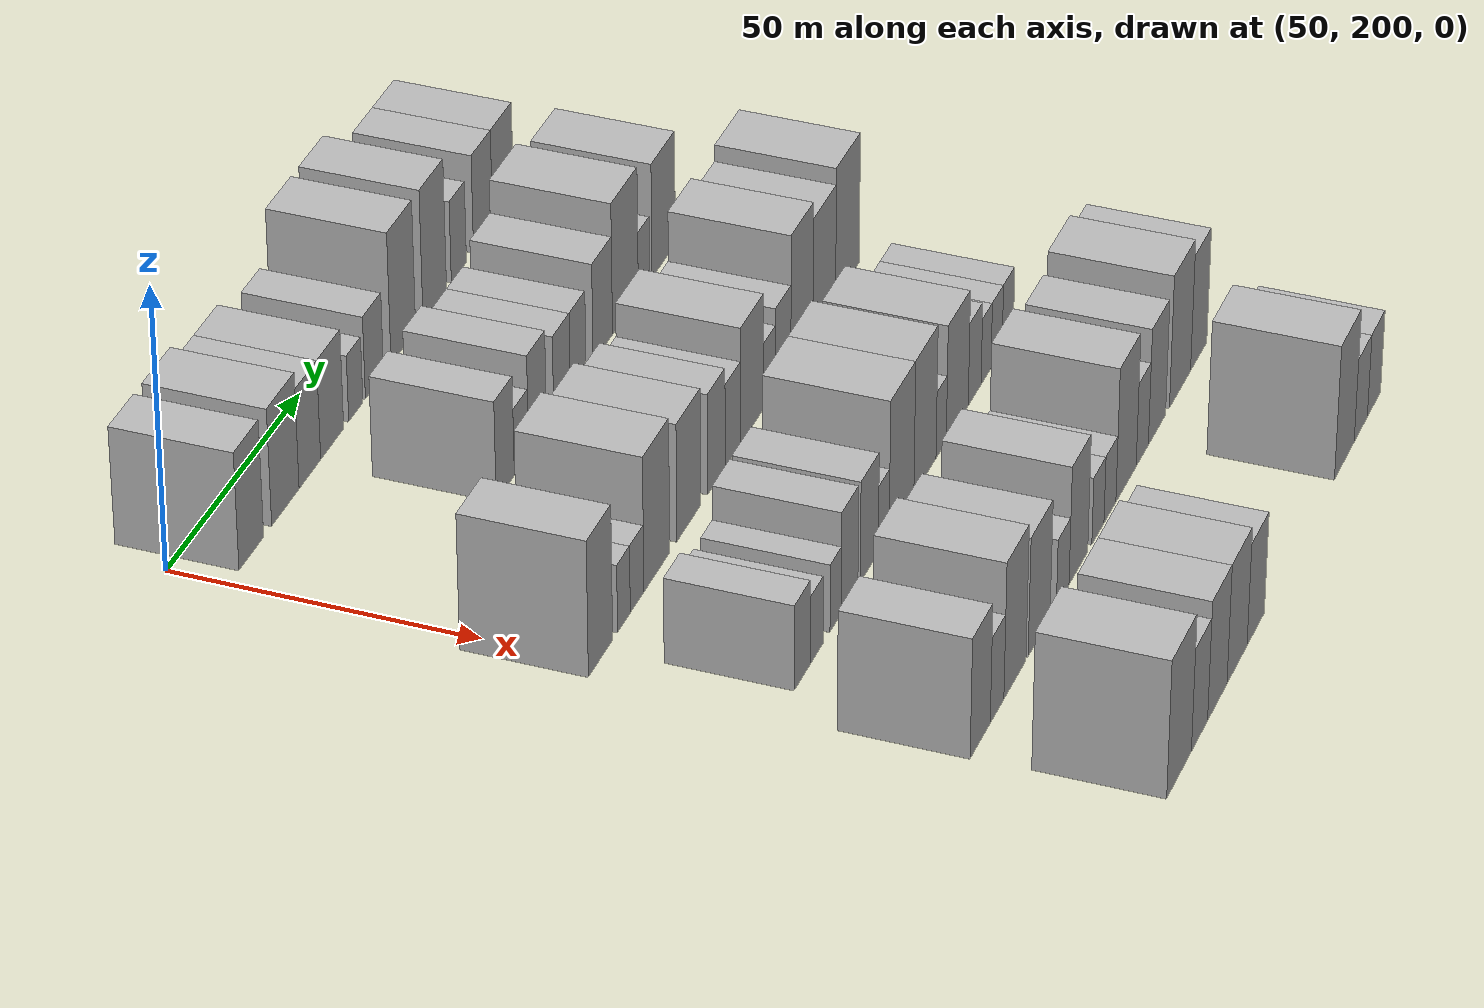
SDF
<sdf version="1.6">
 <world name="default">
  <model name="building_88">
   <static>1</static>
   <pose>50.0000 208.3711 0 0.000000 0.000000 0.000000</pose>
   <link name="link">
    <pose>0 0 10.50 0 0 0</pose>
    <collision name="collision"><geometry><box><size>20.0000 9.1573 21.0000</size></box></geometry></collision>
    <visual name="visual">
     <cast_shadows>0</cast_shadows>
     <geometry><box><size>20.0000 9.1573 21.0000</size></box></geometry>
     <material>
      <script>
       <uri>model://HANNAS_wall/materials/scripts</uri>
       <uri>model://HANNAS_wall/materials/textures</uri>
       <name>vrc/HANNAS_wall</name>
      </script>
     </material>
    </visual>
   </link>
  </model>
  <model name="building_89">
   <static>1</static>
   <pose>50.0000 221.1318 0 0.000000 0.000000 0.000000</pose>
   <link name="link">
    <pose>0 0 10.50 0 0 0</pose>
    <collision name="collision"><geometry><box><size>20.0000 10.3640 21.0000</size></box></geometry></collision>
    <visual name="visual">
     <cast_shadows>0</cast_shadows>
     <geometry><box><size>20.0000 10.3640 21.0000</size></box></geometry>
     <material>
      <script>
       <uri>model://HANNAS_wall/materials/scripts</uri>
       <uri>model://HANNAS_wall/materials/textures</uri>
       <name>vrc/HANNAS_wall</name>
      </script>
     </material>
    </visual>
   </link>
  </model>
  <model name="building_90">
   <static>1</static>
   <pose>50.0000 230.4606 0 0.000000 0.000000 0.000000</pose>
   <link name="link">
    <pose>0 0 9.00 0 0 0</pose>
    <collision name="collision"><geometry><box><size>20.0000 8.2935 18.0000</size></box></geometry></collision>
    <visual name="visual">
     <cast_shadows>0</cast_shadows>
     <geometry><box><size>20.0000 8.2935 18.0000</size></box></geometry>
     <material>
      <script>
       <uri>model://HANNAS_wall/materials/scripts</uri>
       <uri>model://HANNAS_wall/materials/textures</uri>
       <name>vrc/HANNAS_wall</name>
      </script>
     </material>
    </visual>
   </link>
  </model>
  <model name="building_91">
   <static>1</static>
   <pose>50.0000 239.0653 0 0.000000 0.000000 0.000000</pose>
   <link name="link">
    <pose>0 0 9.00 0 0 0</pose>
    <collision name="collision"><geometry><box><size>20.0000 8.9161 18.0000</size></box></geometry></collision>
    <visual name="visual">
     <cast_shadows>0</cast_shadows>
     <geometry><box><size>20.0000 8.9161 18.0000</size></box></geometry>
     <material>
      <script>
       <uri>model://HANNAS_wall/materials/scripts</uri>
       <uri>model://HANNAS_wall/materials/textures</uri>
       <name>vrc/HANNAS_wall</name>
      </script>
     </material>
    </visual>
   </link>
  </model>
  <model name="building_92">
   <static>1</static>
   <pose>50.0000 248.3040 0 0.000000 0.000000 0.000000</pose>
   <link name="link">
    <pose>0 0 6.00 0 0 0</pose>
    <collision name="collision"><geometry><box><size>20.0000 5.5612 12.0000</size></box></geometry></collision>
    <visual name="visual">
     <cast_shadows>0</cast_shadows>
     <geometry><box><size>20.0000 5.5612 12.0000</size></box></geometry>
     <material>
      <script>
       <uri>model://HANNAS_wall/materials/scripts</uri>
       <uri>model://HANNAS_wall/materials/textures</uri>
       <name>vrc/HANNAS_wall</name>
      </script>
     </material>
    </visual>
   </link>
  </model>
  <model name="building_93">
   <static>1</static>
   <pose>50.0000 255.6967 0 0.000000 0.000000 0.000000</pose>
   <link name="link">
    <pose>0 0 7.50 0 0 0</pose>
    <collision name="collision"><geometry><box><size>20.0000 7.2244 15.0000</size></box></geometry></collision>
    <visual name="visual">
     <cast_shadows>0</cast_shadows>
     <geometry><box><size>20.0000 7.2244 15.0000</size></box></geometry>
     <material>
      <script>
       <uri>model://HANNAS_wall/materials/scripts</uri>
       <uri>model://HANNAS_wall/materials/textures</uri>
       <name>vrc/HANNAS_wall</name>
      </script>
     </material>
    </visual>
   </link>
  </model>
  <model name="building_94">
   <static>1</static>
   <pose>50.0000 267.2891 0 0.000000 0.000000 0.000000</pose>
   <link name="link">
    <pose>0 0 12.00 0 0 0</pose>
    <collision name="collision"><geometry><box><size>20.0000 9.9604 24.0000</size></box></geometry></collision>
    <visual name="visual">
     <cast_shadows>0</cast_shadows>
     <geometry><box><size>20.0000 9.9604 24.0000</size></box></geometry>
     <material>
      <script>
       <uri>model://HANNAS_wall/materials/scripts</uri>
       <uri>model://HANNAS_wall/materials/textures</uri>
       <name>vrc/HANNAS_wall</name>
      </script>
     </material>
    </visual>
   </link>
  </model>
  <model name="building_95">
   <static>1</static>
   <pose>50.0000 280.1073 0 0.000000 0.000000 0.000000</pose>
   <link name="link">
    <pose>0 0 12.00 0 0 0</pose>
    <collision name="collision"><geometry><box><size>20.0000 9.6760 24.0000</size></box></geometry></collision>
    <visual name="visual">
     <cast_shadows>0</cast_shadows>
     <geometry><box><size>20.0000 9.6760 24.0000</size></box></geometry>
     <material>
      <script>
       <uri>model://HANNAS_wall/materials/scripts</uri>
       <uri>model://HANNAS_wall/materials/textures</uri>
       <name>vrc/HANNAS_wall</name>
      </script>
     </material>
    </visual>
   </link>
  </model>
  <model name="building_96">
   <static>1</static>
   <pose>50.0000 290.0958 0 0.000000 0.000000 0.000000</pose>
   <link name="link">
    <pose>0 0 7.50 0 0 0</pose>
    <collision name="collision"><geometry><box><size>20.0000 6.3010 15.0000</size></box></geometry></collision>
    <visual name="visual">
     <cast_shadows>0</cast_shadows>
     <geometry><box><size>20.0000 6.3010 15.0000</size></box></geometry>
     <material>
      <script>
       <uri>model://HANNAS_wall/materials/scripts</uri>
       <uri>model://HANNAS_wall/materials/textures</uri>
       <name>vrc/HANNAS_wall</name>
      </script>
     </material>
    </visual>
   </link>
  </model>
  <model name="building_97">
   <static>1</static>
   <pose>50.0000 300.2858 0 0.000000 0.000000 0.000000</pose>
   <link name="link">
    <pose>0 0 9.00 0 0 0</pose>
    <collision name="collision"><geometry><box><size>20.0000 8.0790 18.0000</size></box></geometry></collision>
    <visual name="visual">
     <cast_shadows>0</cast_shadows>
     <geometry><box><size>20.0000 8.0790 18.0000</size></box></geometry>
     <material>
      <script>
       <uri>model://HANNAS_wall/materials/scripts</uri>
       <uri>model://HANNAS_wall/materials/textures</uri>
       <name>vrc/HANNAS_wall</name>
      </script>
     </material>
    </visual>
   </link>
  </model>
  <model name="building_98">
   <static>1</static>
   <pose>50.0000 308.7973 0 0.000000 0.000000 0.000000</pose>
   <link name="link">
    <pose>0 0 9.00 0 0 0</pose>
    <collision name="collision"><geometry><box><size>20.0000 8.9439 18.0000</size></box></geometry></collision>
    <visual name="visual">
     <cast_shadows>0</cast_shadows>
     <geometry><box><size>20.0000 8.9439 18.0000</size></box></geometry>
     <material>
      <script>
       <uri>model://HANNAS_wall/materials/scripts</uri>
       <uri>model://HANNAS_wall/materials/textures</uri>
       <name>vrc/HANNAS_wall</name>
      </script>
     </material>
    </visual>
   </link>
  </model>
  <model name="building_201">
   <static>1</static>
   <pose>79.0000 236.9448 0 0.000000 0.000000 0.000000</pose>
   <link name="link">
    <pose>0 0 9.00 0 0 0</pose>
    <collision name="collision"><geometry><box><size>20.0000 7.3240 18.0000</size></box></geometry></collision>
    <visual name="visual">
     <cast_shadows>0</cast_shadows>
     <geometry><box><size>20.0000 7.3240 18.0000</size></box></geometry>
     <material>
      <script>
       <uri>model://HANNAS_wall/materials/scripts</uri>
       <uri>model://HANNAS_wall/materials/textures</uri>
       <name>vrc/HANNAS_wall</name>
      </script>
     </material>
    </visual>
   </link>
  </model>
  <model name="building_202">
   <static>1</static>
   <pose>79.0000 243.5444 0 0.000000 0.000000 0.000000</pose>
   <link name="link">
    <pose>0 0 6.00 0 0 0</pose>
    <collision name="collision"><geometry><box><size>20.0000 5.8751 12.0000</size></box></geometry></collision>
    <visual name="visual">
     <cast_shadows>0</cast_shadows>
     <geometry><box><size>20.0000 5.8751 12.0000</size></box></geometry>
     <material>
      <script>
       <uri>model://HANNAS_wall/materials/scripts</uri>
       <uri>model://HANNAS_wall/materials/textures</uri>
       <name>vrc/HANNAS_wall</name>
      </script>
     </material>
    </visual>
   </link>
  </model>
  <model name="building_203">
   <static>1</static>
   <pose>79.0000 250.1684 0 0.000000 0.000000 0.000000</pose>
   <link name="link">
    <pose>0 0 9.00 0 0 0</pose>
    <collision name="collision"><geometry><box><size>20.0000 7.3730 18.0000</size></box></geometry></collision>
    <visual name="visual">
     <cast_shadows>0</cast_shadows>
     <geometry><box><size>20.0000 7.3730 18.0000</size></box></geometry>
     <material>
      <script>
       <uri>model://HANNAS_wall/materials/scripts</uri>
       <uri>model://HANNAS_wall/materials/textures</uri>
       <name>vrc/HANNAS_wall</name>
      </script>
     </material>
    </visual>
   </link>
  </model>
  <model name="building_204">
   <static>1</static>
   <pose>79.0000 260.3399 0 0.000000 0.000000 0.000000</pose>
   <link name="link">
    <pose>0 0 7.50 0 0 0</pose>
    <collision name="collision"><geometry><box><size>20.0000 6.9699 15.0000</size></box></geometry></collision>
    <visual name="visual">
     <cast_shadows>0</cast_shadows>
     <geometry><box><size>20.0000 6.9699 15.0000</size></box></geometry>
     <material>
      <script>
       <uri>model://HANNAS_wall/materials/scripts</uri>
       <uri>model://HANNAS_wall/materials/textures</uri>
       <name>vrc/HANNAS_wall</name>
      </script>
     </material>
    </visual>
   </link>
  </model>
  <model name="building_205">
   <static>1</static>
   <pose>79.0000 267.1229 0 0.000000 0.000000 0.000000</pose>
   <link name="link">
    <pose>0 0 7.50 0 0 0</pose>
    <collision name="collision"><geometry><box><size>20.0000 6.5961 15.0000</size></box></geometry></collision>
    <visual name="visual">
     <cast_shadows>0</cast_shadows>
     <geometry><box><size>20.0000 6.5961 15.0000</size></box></geometry>
     <material>
      <script>
       <uri>model://HANNAS_wall/materials/scripts</uri>
       <uri>model://HANNAS_wall/materials/textures</uri>
       <name>vrc/HANNAS_wall</name>
      </script>
     </material>
    </visual>
   </link>
  </model>
  <model name="building_206">
   <static>1</static>
   <pose>79.0000 277.5878 0 0.000000 0.000000 0.000000</pose>
   <link name="link">
    <pose>0 0 9.00 0 0 0</pose>
    <collision name="collision"><geometry><box><size>20.0000 8.3338 18.0000</size></box></geometry></collision>
    <visual name="visual">
     <cast_shadows>0</cast_shadows>
     <geometry><box><size>20.0000 8.3338 18.0000</size></box></geometry>
     <material>
      <script>
       <uri>model://HANNAS_wall/materials/scripts</uri>
       <uri>model://HANNAS_wall/materials/textures</uri>
       <name>vrc/HANNAS_wall</name>
      </script>
     </material>
    </visual>
   </link>
  </model>
  <model name="building_207">
   <static>1</static>
   <pose>79.0000 287.3662 0 0.000000 0.000000 0.000000</pose>
   <link name="link">
    <pose>0 0 12.00 0 0 0</pose>
    <collision name="collision"><geometry><box><size>20.0000 11.2230 24.0000</size></box></geometry></collision>
    <visual name="visual">
     <cast_shadows>0</cast_shadows>
     <geometry><box><size>20.0000 11.2230 24.0000</size></box></geometry>
     <material>
      <script>
       <uri>model://HANNAS_wall/materials/scripts</uri>
       <uri>model://HANNAS_wall/materials/textures</uri>
       <name>vrc/HANNAS_wall</name>
      </script>
     </material>
    </visual>
   </link>
  </model>
  <model name="building_208">
   <static>1</static>
   <pose>79.0000 295.4845 0 0.000000 0.000000 0.000000</pose>
   <link name="link">
    <pose>0 0 6.00 0 0 0</pose>
    <collision name="collision"><geometry><box><size>20.0000 5.0136 12.0000</size></box></geometry></collision>
    <visual name="visual">
     <cast_shadows>0</cast_shadows>
     <geometry><box><size>20.0000 5.0136 12.0000</size></box></geometry>
     <material>
      <script>
       <uri>model://HANNAS_wall/materials/scripts</uri>
       <uri>model://HANNAS_wall/materials/textures</uri>
       <name>vrc/HANNAS_wall</name>
      </script>
     </material>
    </visual>
   </link>
  </model>
  <model name="building_209">
   <static>1</static>
   <pose>79.0000 304.1944 0 0.000000 0.000000 0.000000</pose>
   <link name="link">
    <pose>0 0 10.50 0 0 0</pose>
    <collision name="collision"><geometry><box><size>20.0000 10.4061 21.0000</size></box></geometry></collision>
    <visual name="visual">
     <cast_shadows>0</cast_shadows>
     <geometry><box><size>20.0000 10.4061 21.0000</size></box></geometry>
     <material>
      <script>
       <uri>model://HANNAS_wall/materials/scripts</uri>
       <uri>model://HANNAS_wall/materials/textures</uri>
       <name>vrc/HANNAS_wall</name>
      </script>
     </material>
    </visual>
   </link>
  </model>
  <model name="building_312">
   <static>1</static>
   <pose>108.0000 201.3694 0 0.000000 0.000000 0.000000</pose>
   <link name="link">
    <pose>0 0 12.00 0 0 0</pose>
    <collision name="collision"><geometry><box><size>20.0000 9.7514 24.0000</size></box></geometry></collision>
    <visual name="visual">
     <cast_shadows>0</cast_shadows>
     <geometry><box><size>20.0000 9.7514 24.0000</size></box></geometry>
     <material>
      <script>
       <uri>model://HANNAS_wall/materials/scripts</uri>
       <uri>model://HANNAS_wall/materials/textures</uri>
       <name>vrc/HANNAS_wall</name>
      </script>
     </material>
    </visual>
   </link>
  </model>
  <model name="building_313">
   <static>1</static>
   <pose>108.0000 210.8467 0 0.000000 0.000000 0.000000</pose>
   <link name="link">
    <pose>0 0 6.00 0 0 0</pose>
    <collision name="collision"><geometry><box><size>20.0000 5.2030 12.0000</size></box></geometry></collision>
    <visual name="visual">
     <cast_shadows>0</cast_shadows>
     <geometry><box><size>20.0000 5.2030 12.0000</size></box></geometry>
     <material>
      <script>
       <uri>model://HANNAS_wall/materials/scripts</uri>
       <uri>model://HANNAS_wall/materials/textures</uri>
       <name>vrc/HANNAS_wall</name>
      </script>
     </material>
    </visual>
   </link>
  </model>
  <model name="building_314">
   <static>1</static>
   <pose>108.0000 216.2438 0 0.000000 0.000000 0.000000</pose>
   <link name="link">
    <pose>0 0 6.00 0 0 0</pose>
    <collision name="collision"><geometry><box><size>20.0000 5.5913 12.0000</size></box></geometry></collision>
    <visual name="visual">
     <cast_shadows>0</cast_shadows>
     <geometry><box><size>20.0000 5.5913 12.0000</size></box></geometry>
     <material>
      <script>
       <uri>model://HANNAS_wall/materials/scripts</uri>
       <uri>model://HANNAS_wall/materials/textures</uri>
       <name>vrc/HANNAS_wall</name>
      </script>
     </material>
    </visual>
   </link>
  </model>
  <model name="building_315">
   <static>1</static>
   <pose>108.0000 224.4160 0 0.000000 0.000000 0.000000</pose>
   <link name="link">
    <pose>0 0 12.00 0 0 0</pose>
    <collision name="collision"><geometry><box><size>20.0000 10.7532 24.0000</size></box></geometry></collision>
    <visual name="visual">
     <cast_shadows>0</cast_shadows>
     <geometry><box><size>20.0000 10.7532 24.0000</size></box></geometry>
     <material>
      <script>
       <uri>model://HANNAS_wall/materials/scripts</uri>
       <uri>model://HANNAS_wall/materials/textures</uri>
       <name>vrc/HANNAS_wall</name>
      </script>
     </material>
    </visual>
   </link>
  </model>
  <model name="building_316">
   <static>1</static>
   <pose>108.0000 237.8615 0 0.000000 0.000000 0.000000</pose>
   <link name="link">
    <pose>0 0 10.50 0 0 0</pose>
    <collision name="collision"><geometry><box><size>20.0000 10.1377 21.0000</size></box></geometry></collision>
    <visual name="visual">
     <cast_shadows>0</cast_shadows>
     <geometry><box><size>20.0000 10.1377 21.0000</size></box></geometry>
     <material>
      <script>
       <uri>model://HANNAS_wall/materials/scripts</uri>
       <uri>model://HANNAS_wall/materials/textures</uri>
       <name>vrc/HANNAS_wall</name>
      </script>
     </material>
    </visual>
   </link>
  </model>
  <model name="building_317">
   <static>1</static>
   <pose>108.0000 249.7180 0 0.000000 0.000000 0.000000</pose>
   <link name="link">
    <pose>0 0 9.00 0 0 0</pose>
    <collision name="collision"><geometry><box><size>20.0000 7.5753 18.0000</size></box></geometry></collision>
    <visual name="visual">
     <cast_shadows>0</cast_shadows>
     <geometry><box><size>20.0000 7.5753 18.0000</size></box></geometry>
     <material>
      <script>
       <uri>model://HANNAS_wall/materials/scripts</uri>
       <uri>model://HANNAS_wall/materials/textures</uri>
       <name>vrc/HANNAS_wall</name>
      </script>
     </material>
    </visual>
   </link>
  </model>
  <model name="building_318">
   <static>1</static>
   <pose>108.0000 256.8769 0 0.000000 0.000000 0.000000</pose>
   <link name="link">
    <pose>0 0 7.50 0 0 0</pose>
    <collision name="collision"><geometry><box><size>20.0000 6.7425 15.0000</size></box></geometry></collision>
    <visual name="visual">
     <cast_shadows>0</cast_shadows>
     <geometry><box><size>20.0000 6.7425 15.0000</size></box></geometry>
     <material>
      <script>
       <uri>model://HANNAS_wall/materials/scripts</uri>
       <uri>model://HANNAS_wall/materials/textures</uri>
       <name>vrc/HANNAS_wall</name>
      </script>
     </material>
    </visual>
   </link>
  </model>
  <model name="building_319">
   <static>1</static>
   <pose>108.0000 265.2940 0 0.000000 0.000000 0.000000</pose>
   <link name="link">
    <pose>0 0 10.50 0 0 0</pose>
    <collision name="collision"><geometry><box><size>20.0000 10.0917 21.0000</size></box></geometry></collision>
    <visual name="visual">
     <cast_shadows>0</cast_shadows>
     <geometry><box><size>20.0000 10.0917 21.0000</size></box></geometry>
     <material>
      <script>
       <uri>model://HANNAS_wall/materials/scripts</uri>
       <uri>model://HANNAS_wall/materials/textures</uri>
       <name>vrc/HANNAS_wall</name>
      </script>
     </material>
    </visual>
   </link>
  </model>
  <model name="building_320">
   <static>1</static>
   <pose>108.0000 273.0103 0 0.000000 0.000000 0.000000</pose>
   <link name="link">
    <pose>0 0 6.00 0 0 0</pose>
    <collision name="collision"><geometry><box><size>20.0000 5.3409 12.0000</size></box></geometry></collision>
    <visual name="visual">
     <cast_shadows>0</cast_shadows>
     <geometry><box><size>20.0000 5.3409 12.0000</size></box></geometry>
     <material>
      <script>
       <uri>model://HANNAS_wall/materials/scripts</uri>
       <uri>model://HANNAS_wall/materials/textures</uri>
       <name>vrc/HANNAS_wall</name>
      </script>
     </material>
    </visual>
   </link>
  </model>
  <model name="building_321">
   <static>1</static>
   <pose>108.0000 279.1522 0 0.000000 0.000000 0.000000</pose>
   <link name="link">
    <pose>0 0 7.50 0 0 0</pose>
    <collision name="collision"><geometry><box><size>20.0000 6.9429 15.0000</size></box></geometry></collision>
    <visual name="visual">
     <cast_shadows>0</cast_shadows>
     <geometry><box><size>20.0000 6.9429 15.0000</size></box></geometry>
     <material>
      <script>
       <uri>model://HANNAS_wall/materials/scripts</uri>
       <uri>model://HANNAS_wall/materials/textures</uri>
       <name>vrc/HANNAS_wall</name>
      </script>
     </material>
    </visual>
   </link>
  </model>
  <model name="building_322">
   <static>1</static>
   <pose>108.0000 287.7018 0 0.000000 0.000000 0.000000</pose>
   <link name="link">
    <pose>0 0 12.00 0 0 0</pose>
    <collision name="collision"><geometry><box><size>20.0000 10.1563 24.0000</size></box></geometry></collision>
    <visual name="visual">
     <cast_shadows>0</cast_shadows>
     <geometry><box><size>20.0000 10.1563 24.0000</size></box></geometry>
     <material>
      <script>
       <uri>model://HANNAS_wall/materials/scripts</uri>
       <uri>model://HANNAS_wall/materials/textures</uri>
       <name>vrc/HANNAS_wall</name>
      </script>
     </material>
    </visual>
   </link>
  </model>
  <model name="building_323">
   <static>1</static>
   <pose>108.0000 297.9927 0 0.000000 0.000000 0.000000</pose>
   <link name="link">
    <pose>0 0 10.50 0 0 0</pose>
    <collision name="collision"><geometry><box><size>20.0000 10.4255 21.0000</size></box></geometry></collision>
    <visual name="visual">
     <cast_shadows>0</cast_shadows>
     <geometry><box><size>20.0000 10.4255 21.0000</size></box></geometry>
     <material>
      <script>
       <uri>model://HANNAS_wall/materials/scripts</uri>
       <uri>model://HANNAS_wall/materials/textures</uri>
       <name>vrc/HANNAS_wall</name>
      </script>
     </material>
    </visual>
   </link>
  </model>
  <model name="building_324">
   <static>1</static>
   <pose>108.0000 308.7622 0 0.000000 0.000000 0.000000</pose>
   <link name="link">
    <pose>0 0 12.00 0 0 0</pose>
    <collision name="collision"><geometry><box><size>20.0000 11.1136 24.0000</size></box></geometry></collision>
    <visual name="visual">
     <cast_shadows>0</cast_shadows>
     <geometry><box><size>20.0000 11.1136 24.0000</size></box></geometry>
     <material>
      <script>
       <uri>model://HANNAS_wall/materials/scripts</uri>
       <uri>model://HANNAS_wall/materials/textures</uri>
       <name>vrc/HANNAS_wall</name>
      </script>
     </material>
    </visual>
   </link>
  </model>
  <model name="building_422">
   <static>1</static>
   <pose>137.0000 206.9649 0 0.000000 0.000000 0.000000</pose>
   <link name="link">
    <pose>0 0 7.50 0 0 0</pose>
    <collision name="collision"><geometry><box><size>20.0000 6.7287 15.0000</size></box></geometry></collision>
    <visual name="visual">
     <cast_shadows>0</cast_shadows>
     <geometry><box><size>20.0000 6.7287 15.0000</size></box></geometry>
     <material>
      <script>
       <uri>model://HANNAS_wall/materials/scripts</uri>
       <uri>model://HANNAS_wall/materials/textures</uri>
       <name>vrc/HANNAS_wall</name>
      </script>
     </material>
    </visual>
   </link>
  </model>
  <model name="building_423">
   <static>1</static>
   <pose>137.0000 213.1259 0 0.000000 0.000000 0.000000</pose>
   <link name="link">
    <pose>0 0 6.00 0 0 0</pose>
    <collision name="collision"><geometry><box><size>20.0000 5.5933 12.0000</size></box></geometry></collision>
    <visual name="visual">
     <cast_shadows>0</cast_shadows>
     <geometry><box><size>20.0000 5.5933 12.0000</size></box></geometry>
     <material>
      <script>
       <uri>model://HANNAS_wall/materials/scripts</uri>
       <uri>model://HANNAS_wall/materials/textures</uri>
       <name>vrc/HANNAS_wall</name>
      </script>
     </material>
    </visual>
   </link>
  </model>
  <model name="building_424">
   <static>1</static>
   <pose>137.0000 221.3655 0 0.000000 0.000000 0.000000</pose>
   <link name="link">
    <pose>0 0 6.00 0 0 0</pose>
    <collision name="collision"><geometry><box><size>20.0000 4.8858 12.0000</size></box></geometry></collision>
    <visual name="visual">
     <cast_shadows>0</cast_shadows>
     <geometry><box><size>20.0000 4.8858 12.0000</size></box></geometry>
     <material>
      <script>
       <uri>model://HANNAS_wall/materials/scripts</uri>
       <uri>model://HANNAS_wall/materials/textures</uri>
       <name>vrc/HANNAS_wall</name>
      </script>
     </material>
    </visual>
   </link>
  </model>
  <model name="building_425">
   <static>1</static>
   <pose>137.0000 227.4867 0 0.000000 0.000000 0.000000</pose>
   <link name="link">
    <pose>0 0 9.00 0 0 0</pose>
    <collision name="collision"><geometry><box><size>20.0000 7.3567 18.0000</size></box></geometry></collision>
    <visual name="visual">
     <cast_shadows>0</cast_shadows>
     <geometry><box><size>20.0000 7.3567 18.0000</size></box></geometry>
     <material>
      <script>
       <uri>model://HANNAS_wall/materials/scripts</uri>
       <uri>model://HANNAS_wall/materials/textures</uri>
       <name>vrc/HANNAS_wall</name>
      </script>
     </material>
    </visual>
   </link>
  </model>
  <model name="building_426">
   <static>1</static>
   <pose>137.0000 236.1944 0 0.000000 0.000000 0.000000</pose>
   <link name="link">
    <pose>0 0 9.00 0 0 0</pose>
    <collision name="collision"><geometry><box><size>20.0000 8.0587 18.0000</size></box></geometry></collision>
    <visual name="visual">
     <cast_shadows>0</cast_shadows>
     <geometry><box><size>20.0000 8.0587 18.0000</size></box></geometry>
     <material>
      <script>
       <uri>model://HANNAS_wall/materials/scripts</uri>
       <uri>model://HANNAS_wall/materials/textures</uri>
       <name>vrc/HANNAS_wall</name>
      </script>
     </material>
    </visual>
   </link>
  </model>
  <model name="building_427">
   <static>1</static>
   <pose>137.0000 242.6788 0 0.000000 0.000000 0.000000</pose>
   <link name="link">
    <pose>0 0 6.00 0 0 0</pose>
    <collision name="collision"><geometry><box><size>20.0000 4.9102 12.0000</size></box></geometry></collision>
    <visual name="visual">
     <cast_shadows>0</cast_shadows>
     <geometry><box><size>20.0000 4.9102 12.0000</size></box></geometry>
     <material>
      <script>
       <uri>model://HANNAS_wall/materials/scripts</uri>
       <uri>model://HANNAS_wall/materials/textures</uri>
       <name>vrc/HANNAS_wall</name>
      </script>
     </material>
    </visual>
   </link>
  </model>
  <model name="building_428">
   <static>1</static>
   <pose>137.0000 250.7741 0 0.000000 0.000000 0.000000</pose>
   <link name="link">
    <pose>0 0 12.00 0 0 0</pose>
    <collision name="collision"><geometry><box><size>20.0000 11.2804 24.0000</size></box></geometry></collision>
    <visual name="visual">
     <cast_shadows>0</cast_shadows>
     <geometry><box><size>20.0000 11.2804 24.0000</size></box></geometry>
     <material>
      <script>
       <uri>model://HANNAS_wall/materials/scripts</uri>
       <uri>model://HANNAS_wall/materials/textures</uri>
       <name>vrc/HANNAS_wall</name>
      </script>
     </material>
    </visual>
   </link>
  </model>
  <model name="building_429">
   <static>1</static>
   <pose>137.0000 261.5382 0 0.000000 0.000000 0.000000</pose>
   <link name="link">
    <pose>0 0 12.00 0 0 0</pose>
    <collision name="collision"><geometry><box><size>20.0000 10.2480 24.0000</size></box></geometry></collision>
    <visual name="visual">
     <cast_shadows>0</cast_shadows>
     <geometry><box><size>20.0000 10.2480 24.0000</size></box></geometry>
     <material>
      <script>
       <uri>model://HANNAS_wall/materials/scripts</uri>
       <uri>model://HANNAS_wall/materials/textures</uri>
       <name>vrc/HANNAS_wall</name>
      </script>
     </material>
    </visual>
   </link>
  </model>
  <model name="building_430">
   <static>1</static>
   <pose>137.0000 269.0658 0 0.000000 0.000000 0.000000</pose>
   <link name="link">
    <pose>0 0 6.00 0 0 0</pose>
    <collision name="collision"><geometry><box><size>20.0000 4.8072 12.0000</size></box></geometry></collision>
    <visual name="visual">
     <cast_shadows>0</cast_shadows>
     <geometry><box><size>20.0000 4.8072 12.0000</size></box></geometry>
     <material>
      <script>
       <uri>model://HANNAS_wall/materials/scripts</uri>
       <uri>model://HANNAS_wall/materials/textures</uri>
       <name>vrc/HANNAS_wall</name>
      </script>
     </material>
    </visual>
   </link>
  </model>
  <model name="building_431">
   <static>1</static>
   <pose>137.0000 276.6740 0 0.000000 0.000000 0.000000</pose>
   <link name="link">
    <pose>0 0 10.50 0 0 0</pose>
    <collision name="collision"><geometry><box><size>20.0000 10.4091 21.0000</size></box></geometry></collision>
    <visual name="visual">
     <cast_shadows>0</cast_shadows>
     <geometry><box><size>20.0000 10.4091 21.0000</size></box></geometry>
     <material>
      <script>
       <uri>model://HANNAS_wall/materials/scripts</uri>
       <uri>model://HANNAS_wall/materials/textures</uri>
       <name>vrc/HANNAS_wall</name>
      </script>
     </material>
    </visual>
   </link>
  </model>
  <model name="building_432">
   <static>1</static>
   <pose>137.0000 284.9515 0 0.000000 0.000000 0.000000</pose>
   <link name="link">
    <pose>0 0 7.50 0 0 0</pose>
    <collision name="collision"><geometry><box><size>20.0000 6.1460 15.0000</size></box></geometry></collision>
    <visual name="visual">
     <cast_shadows>0</cast_shadows>
     <geometry><box><size>20.0000 6.1460 15.0000</size></box></geometry>
     <material>
      <script>
       <uri>model://HANNAS_wall/materials/scripts</uri>
       <uri>model://HANNAS_wall/materials/textures</uri>
       <name>vrc/HANNAS_wall</name>
      </script>
     </material>
    </visual>
   </link>
  </model>
  <model name="building_433">
   <static>1</static>
   <pose>137.0000 290.4248 0 0.000000 0.000000 0.000000</pose>
   <link name="link">
    <pose>0 0 6.00 0 0 0</pose>
    <collision name="collision"><geometry><box><size>20.0000 4.8007 12.0000</size></box></geometry></collision>
    <visual name="visual">
     <cast_shadows>0</cast_shadows>
     <geometry><box><size>20.0000 4.8007 12.0000</size></box></geometry>
     <material>
      <script>
       <uri>model://HANNAS_wall/materials/scripts</uri>
       <uri>model://HANNAS_wall/materials/textures</uri>
       <name>vrc/HANNAS_wall</name>
      </script>
     </material>
    </visual>
   </link>
  </model>
  <model name="building_434">
   <static>1</static>
   <pose>137.0000 295.5198 0 0.000000 0.000000 0.000000</pose>
   <link name="link">
    <pose>0 0 6.00 0 0 0</pose>
    <collision name="collision"><geometry><box><size>20.0000 5.3893 12.0000</size></box></geometry></collision>
    <visual name="visual">
     <cast_shadows>0</cast_shadows>
     <geometry><box><size>20.0000 5.3893 12.0000</size></box></geometry>
     <material>
      <script>
       <uri>model://HANNAS_wall/materials/scripts</uri>
       <uri>model://HANNAS_wall/materials/textures</uri>
       <name>vrc/HANNAS_wall</name>
      </script>
     </material>
    </visual>
   </link>
  </model>
  <model name="building_435">
   <static>1</static>
   <pose>137.0000 300.9584 0 0.000000 0.000000 0.000000</pose>
   <link name="link">
    <pose>0 0 6.00 0 0 0</pose>
    <collision name="collision"><geometry><box><size>20.0000 5.4880 12.0000</size></box></geometry></collision>
    <visual name="visual">
     <cast_shadows>0</cast_shadows>
     <geometry><box><size>20.0000 5.4880 12.0000</size></box></geometry>
     <material>
      <script>
       <uri>model://HANNAS_wall/materials/scripts</uri>
       <uri>model://HANNAS_wall/materials/textures</uri>
       <name>vrc/HANNAS_wall</name>
      </script>
     </material>
    </visual>
   </link>
  </model>
  <model name="building_538">
   <static>1</static>
   <pose>166.0000 201.1987 0 0.000000 0.000000 0.000000</pose>
   <link name="link">
    <pose>0 0 10.50 0 0 0</pose>
    <collision name="collision"><geometry><box><size>20.0000 9.0111 21.0000</size></box></geometry></collision>
    <visual name="visual">
     <cast_shadows>0</cast_shadows>
     <geometry><box><size>20.0000 9.0111 21.0000</size></box></geometry>
     <material>
      <script>
       <uri>model://HANNAS_wall/materials/scripts</uri>
       <uri>model://HANNAS_wall/materials/textures</uri>
       <name>vrc/HANNAS_wall</name>
      </script>
     </material>
    </visual>
   </link>
  </model>
  <model name="building_539">
   <static>1</static>
   <pose>166.0000 208.7788 0 0.000000 0.000000 0.000000</pose>
   <link name="link">
    <pose>0 0 7.50 0 0 0</pose>
    <collision name="collision"><geometry><box><size>20.0000 6.1491 15.0000</size></box></geometry></collision>
    <visual name="visual">
     <cast_shadows>0</cast_shadows>
     <geometry><box><size>20.0000 6.1491 15.0000</size></box></geometry>
     <material>
      <script>
       <uri>model://HANNAS_wall/materials/scripts</uri>
       <uri>model://HANNAS_wall/materials/textures</uri>
       <name>vrc/HANNAS_wall</name>
      </script>
     </material>
    </visual>
   </link>
  </model>
  <model name="building_540">
   <static>1</static>
   <pose>166.0000 216.9119 0 0.000000 0.000000 0.000000</pose>
   <link name="link">
    <pose>0 0 12.00 0 0 0</pose>
    <collision name="collision"><geometry><box><size>20.0000 10.1172 24.0000</size></box></geometry></collision>
    <visual name="visual">
     <cast_shadows>0</cast_shadows>
     <geometry><box><size>20.0000 10.1172 24.0000</size></box></geometry>
     <material>
      <script>
       <uri>model://HANNAS_wall/materials/scripts</uri>
       <uri>model://HANNAS_wall/materials/textures</uri>
       <name>vrc/HANNAS_wall</name>
      </script>
     </material>
    </visual>
   </link>
  </model>
  <model name="building_541">
   <static>1</static>
   <pose>166.0000 228.0643 0 0.000000 0.000000 0.000000</pose>
   <link name="link">
    <pose>0 0 10.50 0 0 0</pose>
    <collision name="collision"><geometry><box><size>20.0000 10.1877 21.0000</size></box></geometry></collision>
    <visual name="visual">
     <cast_shadows>0</cast_shadows>
     <geometry><box><size>20.0000 10.1877 21.0000</size></box></geometry>
     <material>
      <script>
       <uri>model://HANNAS_wall/materials/scripts</uri>
       <uri>model://HANNAS_wall/materials/textures</uri>
       <name>vrc/HANNAS_wall</name>
      </script>
     </material>
    </visual>
   </link>
  </model>
  <model name="building_542">
   <static>1</static>
   <pose>166.0000 239.1581 0 0.000000 0.000000 0.000000</pose>
   <link name="link">
    <pose>0 0 6.00 0 0 0</pose>
    <collision name="collision"><geometry><box><size>20.0000 5.9998 12.0000</size></box></geometry></collision>
    <visual name="visual">
     <cast_shadows>0</cast_shadows>
     <geometry><box><size>20.0000 5.9998 12.0000</size></box></geometry>
     <material>
      <script>
       <uri>model://HANNAS_wall/materials/scripts</uri>
       <uri>model://HANNAS_wall/materials/textures</uri>
       <name>vrc/HANNAS_wall</name>
      </script>
     </material>
    </visual>
   </link>
  </model>
  <model name="building_543">
   <static>1</static>
   <pose>166.0000 246.6391 0 0.000000 0.000000 0.000000</pose>
   <link name="link">
    <pose>0 0 10.50 0 0 0</pose>
    <collision name="collision"><geometry><box><size>20.0000 8.9622 21.0000</size></box></geometry></collision>
    <visual name="visual">
     <cast_shadows>0</cast_shadows>
     <geometry><box><size>20.0000 8.9622 21.0000</size></box></geometry>
     <material>
      <script>
       <uri>model://HANNAS_wall/materials/scripts</uri>
       <uri>model://HANNAS_wall/materials/textures</uri>
       <name>vrc/HANNAS_wall</name>
      </script>
     </material>
    </visual>
   </link>
  </model>
  <model name="building_544">
   <static>1</static>
   <pose>166.0000 256.0640 0 0.000000 0.000000 0.000000</pose>
   <link name="link">
    <pose>0 0 6.00 0 0 0</pose>
    <collision name="collision"><geometry><box><size>20.0000 5.8877 12.0000</size></box></geometry></collision>
    <visual name="visual">
     <cast_shadows>0</cast_shadows>
     <geometry><box><size>20.0000 5.8877 12.0000</size></box></geometry>
     <material>
      <script>
       <uri>model://HANNAS_wall/materials/scripts</uri>
       <uri>model://HANNAS_wall/materials/textures</uri>
       <name>vrc/HANNAS_wall</name>
      </script>
     </material>
    </visual>
   </link>
  </model>
  <model name="building_545">
   <static>1</static>
   <pose>166.0000 261.9317 0 0.000000 0.000000 0.000000</pose>
   <link name="link">
    <pose>0 0 6.00 0 0 0</pose>
    <collision name="collision"><geometry><box><size>20.0000 5.8476 12.0000</size></box></geometry></collision>
    <visual name="visual">
     <cast_shadows>0</cast_shadows>
     <geometry><box><size>20.0000 5.8476 12.0000</size></box></geometry>
     <material>
      <script>
       <uri>model://HANNAS_wall/materials/scripts</uri>
       <uri>model://HANNAS_wall/materials/textures</uri>
       <name>vrc/HANNAS_wall</name>
      </script>
     </material>
    </visual>
   </link>
  </model>
  <model name="building_546">
   <static>1</static>
   <pose>166.0000 269.8882 0 0.000000 0.000000 0.000000</pose>
   <link name="link">
    <pose>0 0 12.00 0 0 0</pose>
    <collision name="collision"><geometry><box><size>20.0000 10.0655 24.0000</size></box></geometry></collision>
    <visual name="visual">
     <cast_shadows>0</cast_shadows>
     <geometry><box><size>20.0000 10.0655 24.0000</size></box></geometry>
     <material>
      <script>
       <uri>model://HANNAS_wall/materials/scripts</uri>
       <uri>model://HANNAS_wall/materials/textures</uri>
       <name>vrc/HANNAS_wall</name>
      </script>
     </material>
    </visual>
   </link>
  </model>
  <model name="building_547">
   <static>1</static>
   <pose>166.0000 277.9746 0 0.000000 0.000000 0.000000</pose>
   <link name="link">
    <pose>0 0 7.50 0 0 0</pose>
    <collision name="collision"><geometry><box><size>20.0000 6.1073 15.0000</size></box></geometry></collision>
    <visual name="visual">
     <cast_shadows>0</cast_shadows>
     <geometry><box><size>20.0000 6.1073 15.0000</size></box></geometry>
     <material>
      <script>
       <uri>model://HANNAS_wall/materials/scripts</uri>
       <uri>model://HANNAS_wall/materials/textures</uri>
       <name>vrc/HANNAS_wall</name>
      </script>
     </material>
    </visual>
   </link>
  </model>
  <model name="building_548">
   <static>1</static>
   <pose>166.0000 285.3890 0 0.000000 0.000000 0.000000</pose>
   <link name="link">
    <pose>0 0 10.50 0 0 0</pose>
    <collision name="collision"><geometry><box><size>20.0000 8.7214 21.0000</size></box></geometry></collision>
    <visual name="visual">
     <cast_shadows>0</cast_shadows>
     <geometry><box><size>20.0000 8.7214 21.0000</size></box></geometry>
     <material>
      <script>
       <uri>model://HANNAS_wall/materials/scripts</uri>
       <uri>model://HANNAS_wall/materials/textures</uri>
       <name>vrc/HANNAS_wall</name>
      </script>
     </material>
    </visual>
   </link>
  </model>
  <model name="building_549">
   <static>1</static>
   <pose>166.0000 297.1943 0 0.000000 0.000000 0.000000</pose>
   <link name="link">
    <pose>0 0 12.00 0 0 0</pose>
    <collision name="collision"><geometry><box><size>20.0000 10.8893 24.0000</size></box></geometry></collision>
    <visual name="visual">
     <cast_shadows>0</cast_shadows>
     <geometry><box><size>20.0000 10.8893 24.0000</size></box></geometry>
     <material>
      <script>
       <uri>model://HANNAS_wall/materials/scripts</uri>
       <uri>model://HANNAS_wall/materials/textures</uri>
       <name>vrc/HANNAS_wall</name>
      </script>
     </material>
    </visual>
   </link>
  </model>
  <model name="building_550">
   <static>1</static>
   <pose>166.0000 306.8864 0 0.000000 0.000000 0.000000</pose>
   <link name="link">
    <pose>0 0 10.50 0 0 0</pose>
    <collision name="collision"><geometry><box><size>20.0000 8.4950 21.0000</size></box></geometry></collision>
    <visual name="visual">
     <cast_shadows>0</cast_shadows>
     <geometry><box><size>20.0000 8.4950 21.0000</size></box></geometry>
     <material>
      <script>
       <uri>model://HANNAS_wall/materials/scripts</uri>
       <uri>model://HANNAS_wall/materials/textures</uri>
       <name>vrc/HANNAS_wall</name>
      </script>
     </material>
    </visual>
   </link>
  </model>
  <model name="building_651">
   <static>1</static>
   <pose>195.0000 203.1681 0 0.000000 0.000000 0.000000</pose>
   <link name="link">
    <pose>0 0 12.00 0 0 0</pose>
    <collision name="collision"><geometry><box><size>20.0000 11.7877 24.0000</size></box></geometry></collision>
    <visual name="visual">
     <cast_shadows>0</cast_shadows>
     <geometry><box><size>20.0000 11.7877 24.0000</size></box></geometry>
     <material>
      <script>
       <uri>model://HANNAS_wall/materials/scripts</uri>
       <uri>model://HANNAS_wall/materials/textures</uri>
       <name>vrc/HANNAS_wall</name>
      </script>
     </material>
    </visual>
   </link>
  </model>
  <model name="building_652">
   <static>1</static>
   <pose>195.0000 212.9758 0 0.000000 0.000000 0.000000</pose>
   <link name="link">
    <pose>0 0 9.00 0 0 0</pose>
    <collision name="collision"><geometry><box><size>20.0000 7.8276 18.0000</size></box></geometry></collision>
    <visual name="visual">
     <cast_shadows>0</cast_shadows>
     <geometry><box><size>20.0000 7.8276 18.0000</size></box></geometry>
     <material>
      <script>
       <uri>model://HANNAS_wall/materials/scripts</uri>
       <uri>model://HANNAS_wall/materials/textures</uri>
       <name>vrc/HANNAS_wall</name>
      </script>
     </material>
    </visual>
   </link>
  </model>
  <model name="building_653">
   <static>1</static>
   <pose>195.0000 221.6631 0 0.000000 0.000000 0.000000</pose>
   <link name="link">
    <pose>0 0 10.50 0 0 0</pose>
    <collision name="collision"><geometry><box><size>20.0000 9.5470 21.0000</size></box></geometry></collision>
    <visual name="visual">
     <cast_shadows>0</cast_shadows>
     <geometry><box><size>20.0000 9.5470 21.0000</size></box></geometry>
     <material>
      <script>
       <uri>model://HANNAS_wall/materials/scripts</uri>
       <uri>model://HANNAS_wall/materials/textures</uri>
       <name>vrc/HANNAS_wall</name>
      </script>
     </material>
    </visual>
   </link>
  </model>
  <model name="building_654">
   <static>1</static>
   <pose>195.0000 231.4345 0 0.000000 0.000000 0.000000</pose>
   <link name="link">
    <pose>0 0 10.50 0 0 0</pose>
    <collision name="collision"><geometry><box><size>20.0000 9.9958 21.0000</size></box></geometry></collision>
    <visual name="visual">
     <cast_shadows>0</cast_shadows>
     <geometry><box><size>20.0000 9.9958 21.0000</size></box></geometry>
     <material>
      <script>
       <uri>model://HANNAS_wall/materials/scripts</uri>
       <uri>model://HANNAS_wall/materials/textures</uri>
       <name>vrc/HANNAS_wall</name>
      </script>
     </material>
    </visual>
   </link>
  </model>
  <model name="building_655">
   <static>1</static>
   <pose>195.0000 240.8000 0 0.000000 0.000000 0.000000</pose>
   <link name="link">
    <pose>0 0 9.00 0 0 0</pose>
    <collision name="collision"><geometry><box><size>20.0000 8.7353 18.0000</size></box></geometry></collision>
    <visual name="visual">
     <cast_shadows>0</cast_shadows>
     <geometry><box><size>20.0000 8.7353 18.0000</size></box></geometry>
     <material>
      <script>
       <uri>model://HANNAS_wall/materials/scripts</uri>
       <uri>model://HANNAS_wall/materials/textures</uri>
       <name>vrc/HANNAS_wall</name>
      </script>
     </material>
    </visual>
   </link>
  </model>
  <model name="building_656">
   <static>1</static>
   <pose>195.0000 287.1501 0 0.000000 0.000000 0.000000</pose>
   <link name="link">
    <pose>0 0 12.00 0 0 0</pose>
    <collision name="collision"><geometry><box><size>20.0000 10.6550 24.0000</size></box></geometry></collision>
    <visual name="visual">
     <cast_shadows>0</cast_shadows>
     <geometry><box><size>20.0000 10.6550 24.0000</size></box></geometry>
     <material>
      <script>
       <uri>model://HANNAS_wall/materials/scripts</uri>
       <uri>model://HANNAS_wall/materials/textures</uri>
       <name>vrc/HANNAS_wall</name>
      </script>
     </material>
    </visual>
   </link>
  </model>
  <model name="building_657">
   <static>1</static>
   <pose>195.0000 296.0896 0 0.000000 0.000000 0.000000</pose>
   <link name="link">
    <pose>0 0 7.50 0 0 0</pose>
    <collision name="collision"><geometry><box><size>20.0000 7.2239 15.0000</size></box></geometry></collision>
    <visual name="visual">
     <cast_shadows>0</cast_shadows>
     <geometry><box><size>20.0000 7.2239 15.0000</size></box></geometry>
     <material>
      <script>
       <uri>model://HANNAS_wall/materials/scripts</uri>
       <uri>model://HANNAS_wall/materials/textures</uri>
       <name>vrc/HANNAS_wall</name>
      </script>
     </material>
    </visual>
   </link>
  </model>
  <model name="building_658">
   <static>1</static>
   <pose>195.0000 303.3391 0 0.000000 0.000000 0.000000</pose>
   <link name="link">
    <pose>0 0 7.50 0 0 0</pose>
    <collision name="collision"><geometry><box><size>20.0000 7.2752 15.0000</size></box></geometry></collision>
    <visual name="visual">
     <cast_shadows>0</cast_shadows>
     <geometry><box><size>20.0000 7.2752 15.0000</size></box></geometry>
     <material>
      <script>
       <uri>model://HANNAS_wall/materials/scripts</uri>
       <uri>model://HANNAS_wall/materials/textures</uri>
       <name>vrc/HANNAS_wall</name>
      </script>
     </material>
    </visual>
   </link>
  </model>
 </world>
</sdf>
